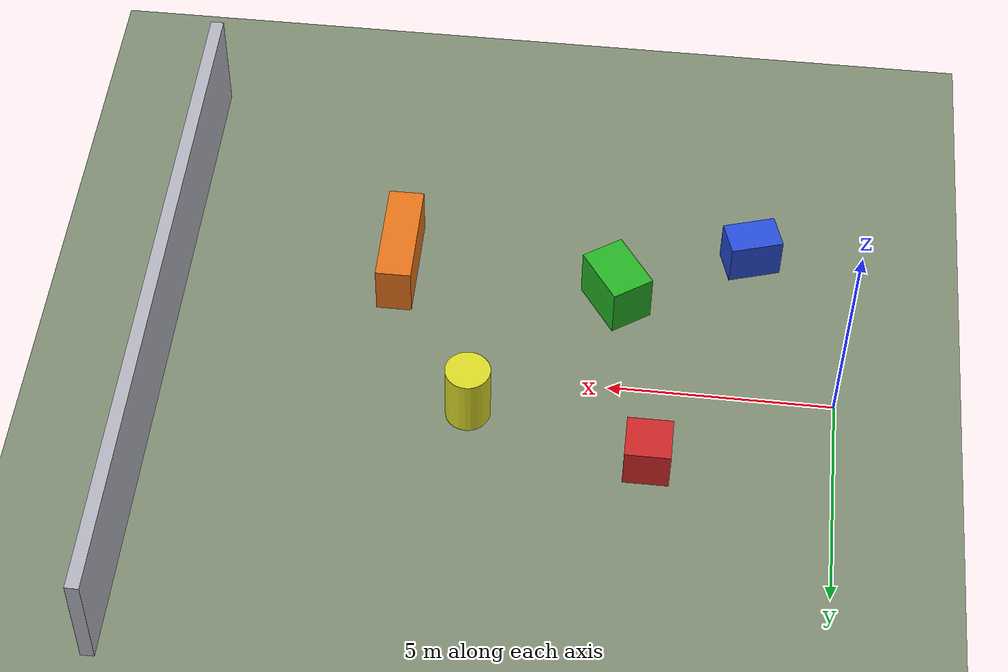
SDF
<?xml version="1.0" ?>
<sdf version="1.10">
  <world name="outdoor">

    <physics name="4ms" type="ignored">
      <max_step_size>0.004</max_step_size>
      <real_time_factor>1.0</real_time_factor>
    </physics>

    <plugin filename="gz-sim-physics-system"
            name="gz::sim::systems::Physics"/>
    <plugin filename="gz-sim-user-commands-system"
            name="gz::sim::systems::UserCommands"/>
    <plugin filename="gz-sim-scene-broadcaster-system"
            name="gz::sim::systems::SceneBroadcaster"/>
    <plugin filename="gz-sim-contact-system"
            name="gz::sim::systems::Contact"/>
    <plugin filename="gz-sim-imu-system"
            name="gz::sim::systems::Imu"/>

    <!-- Точка привязки мира к WGS84 — нужна NavSat-сенсору -->
    <spherical_coordinates>
      <surface_model>EARTH_WGS84</surface_model>
      <world_frame_orientation>ENU</world_frame_orientation>
      <latitude_deg>56.299145</latitude_deg>
      <longitude_deg>43.923061</longitude_deg>
      <elevation>80.0</elevation>
      <heading_deg>0</heading_deg>
    </spherical_coordinates>

    <light type="directional" name="sun">
      <cast_shadows>true</cast_shadows>
      <pose>0 0 10 0 0 0</pose>
      <diffuse>0.9 0.9 0.9 1</diffuse>
      <specular>0.3 0.3 0.3 1</specular>
      <direction>-0.5 0.3 -1</direction>
    </light>

    <scene>
      <ambient>0.5 0.5 0.5 1</ambient>
      <background>0.7 0.8 0.9 1</background>
      <grid>false</grid>
    </scene>

    <model name="ground_plane">
      <static>true</static>
      <link name="link">
        <collision name="collision">
          <geometry><plane><normal>0 0 1</normal><size>200 200</size></plane></geometry>
        </collision>
        <visual name="visual">
          <geometry><plane><normal>0 0 1</normal><size>200 200</size></plane></geometry>
          <material>
            <ambient>0.35 0.4 0.32 1</ambient>
            <diffuse>0.5 0.55 0.45 1</diffuse>
            <specular>0.1 0.1 0.1 1</specular>
          </material>
        </visual>
      </link>
    </model>

    <!-- ===== Текстурные ориентиры для визуальной одометрии ===== -->
    <model name="box_red">
      <static>true</static><pose>4.0 2.0 0.5 0 0 0</pose>
      <link name="link">
        <collision name="c"><geometry><box><size>1.0 1.0 1.0</size></box></geometry></collision>
        <visual name="v"><geometry><box><size>1.0 1.0 1.0</size></box></geometry>
          <material><ambient>0.6 0.1 0.1 1</ambient><diffuse>0.8 0.15 0.15 1</diffuse></material></visual>
      </link>
    </model>
    <model name="box_green">
      <static>true</static><pose>5.0 -2.5 0.6 0 0 0.6</pose>
      <link name="link">
        <collision name="c"><geometry><box><size>1.0 1.4 1.2</size></box></geometry></collision>
        <visual name="v"><geometry><box><size>1.0 1.4 1.2</size></box></geometry>
          <material><ambient>0.1 0.5 0.1 1</ambient><diffuse>0.15 0.7 0.15 1</diffuse></material></visual>
      </link>
    </model>
    <model name="cyl_yellow">
      <static>true</static><pose>8.0 1.0 0.75 0 0 0</pose>
      <link name="link">
        <collision name="c"><geometry><cylinder><radius>0.5</radius><length>1.5</length></cylinder></geometry></collision>
        <visual name="v"><geometry><cylinder><radius>0.5</radius><length>1.5</length></cylinder></geometry>
          <material><ambient>0.6 0.6 0.1 1</ambient><diffuse>0.85 0.85 0.15 1</diffuse></material></visual>
      </link>
    </model>
    <model name="box_blue">
      <static>true</static><pose>2.0 -4.0 0.5 0 0 0.3</pose>
      <link name="link">
        <collision name="c"><geometry><box><size>1.2 0.8 1.0</size></box></geometry></collision>
        <visual name="v"><geometry><box><size>1.2 0.8 1.0</size></box></geometry>
          <material><ambient>0.1 0.2 0.6 1</ambient><diffuse>0.15 0.3 0.85 1</diffuse></material></visual>
      </link>
    </model>
    <model name="box_orange">
      <static>true</static><pose>10.0 -3.0 0.6 0 0 0</pose>
      <link name="link">
        <collision name="c"><geometry><box><size>0.8 2.5 1.2</size></box></geometry></collision>
        <visual name="v"><geometry><box><size>0.8 2.5 1.2</size></box></geometry>
          <material><ambient>0.7 0.35 0.05 1</ambient><diffuse>0.9 0.45 0.1 1</diffuse></material></visual>
      </link>
    </model>
    <model name="wall_far">
      <static>true</static><pose>15.0 0.0 1.25 0 0 0</pose>
      <link name="link">
        <collision name="c"><geometry><box><size>0.3 16.0 2.5</size></box></geometry></collision>
        <visual name="v"><geometry><box><size>0.3 16.0 2.5</size></box></geometry>
          <material><ambient>0.5 0.5 0.55 1</ambient><diffuse>0.7 0.7 0.75 1</diffuse></material></visual>
      </link>
    </model>

  </world>
</sdf>
